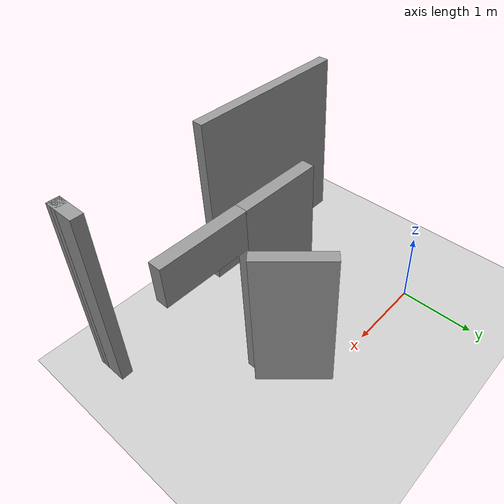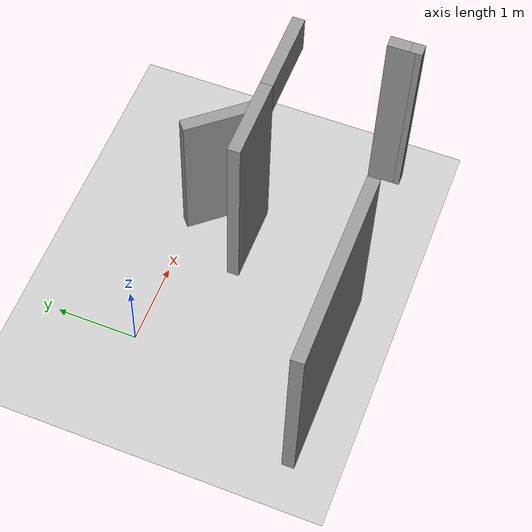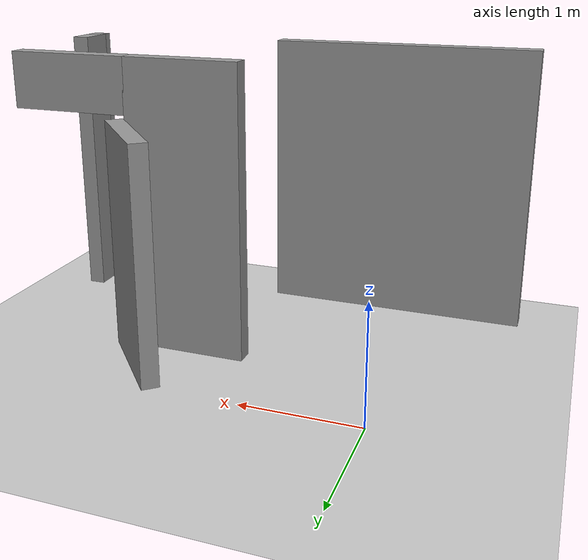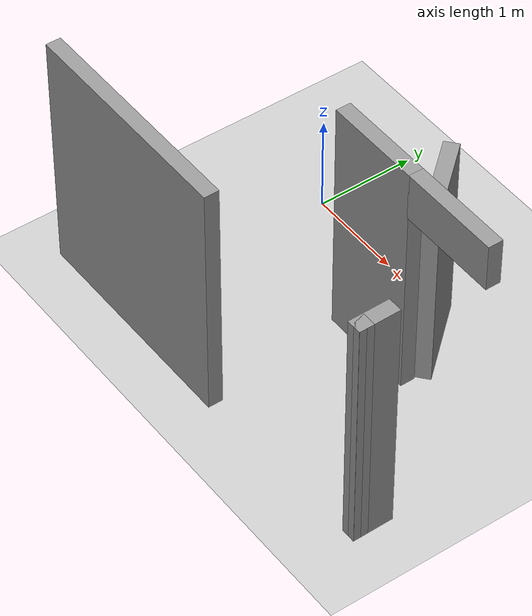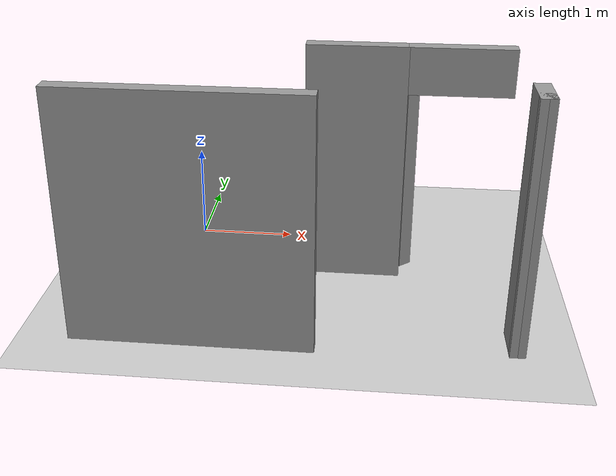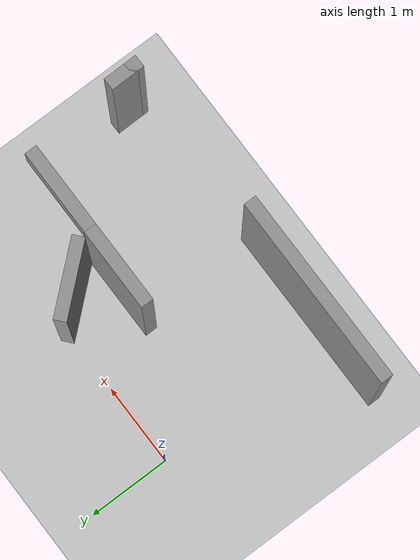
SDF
<sdf version="1.7">
 <world name="default">
  <model name="ground_plane">
   <static>1</static>
   <link name="link">
    <collision name="collision">
     <geometry><plane><normal>0 0 1</normal><size>100 100</size></plane></geometry>
     <surface>
      <contact><collide_bitmask>65535</collide_bitmask></contact>
      <friction><ode><mu>100</mu><mu2>50</mu2></ode></friction>
     </surface>
    </collision>
    <visual name="visual">
     <cast_shadows>0</cast_shadows>
     <geometry><plane><normal>0 0 1</normal><size>100 100</size></plane></geometry>
     <material>
      <script><uri>file://media/materials/scripts/gazebo.material</uri><name>Gazebo/Grey</name></script>
     </material>
    </visual>
   </link>
  </model>
  <model name="demo_clean">
   <link name="Wall_19">
    <pose>0.295923 -2.24288 0 0 -0 0</pose>
    <inertial>
     <inertia><ixx>0</ixx><ixy>0</ixy><ixz>0</ixz><iyy>0</iyy><iyz>0</iyz><izz>0</izz></inertia>
     <mass>0</mass>
    </inertial>
    <visual name="Wall_19_Visual">
     <pose>0 0 1.25 0 -0 0</pose>
     <geometry><box><size>2.34163 0.15 2.5</size></box></geometry>
     <material>
      <script><uri>file://media/materials/scripts/gazebo.material</uri><name>Gazebo/Grey</name></script>
      <ambient>1 1 1 1</ambient>
      <shader type="pixel"/>
     </material>
     <meta><layer>0</layer></meta>
    </visual>
    <collision name="Wall_19_Collision">
     <pose>0 0 1.25 0 -0 0</pose>
     <geometry><box><size>2.34163 0.15 2.5</size></box></geometry>
     <surface>
      <friction>
       <ode><mu>1</mu><mu2>1</mu2><fdir1>0 0 0</fdir1><slip1>0</slip1><slip2>0</slip2></ode>
       <torsional>
        <coefficient>1</coefficient>
        <patch_radius>0</patch_radius>
        <surface_radius>0</surface_radius>
        <use_patch_radius>1</use_patch_radius>
        <ode><slip>0</slip></ode>
       </torsional>
      </friction>
      <bounce><restitution_coefficient>0</restitution_coefficient><threshold>1e+06</threshold></bounce>
      <contact>
       <collide_without_contact>0</collide_without_contact>
       <collide_without_contact_bitmask>1</collide_without_contact_bitmask>
       <collide_bitmask>1</collide_bitmask>
       <ode>
        <soft_cfm>0</soft_cfm>
        <soft_erp>0.2</soft_erp>
        <kp>1e+13</kp>
        <kd>1</kd>
        <max_vel>0.01</max_vel>
        <min_depth>0</min_depth>
       </ode>
       <bullet>
        <split_impulse>1</split_impulse>
        <split_impulse_penetration_threshold>-0.01</split_impulse_penetration_threshold>
        <soft_cfm>0</soft_cfm>
        <soft_erp>0.2</soft_erp>
        <kp>1e+13</kp>
        <kd>1</kd>
       </bullet>
      </contact>
     </surface>
    </collision>
   </link>
   <link name="Wall_21_clone_0_clone_0_clone_clone_clone_clone">
    <pose>2.0073 -0.280742 -0.23202 0 -0 2.28452</pose>
    <inertial>
     <inertia><ixx>0</ixx><ixy>0</ixy><ixz>0</ixz><iyy>0</iyy><iyz>0</iyz><izz>0</izz></inertia>
     <mass>0</mass>
    </inertial>
    <gravity>0</gravity>
    <visual name="Wall_21_Visual">
     <pose>0 0 1.25 0 -0 0</pose>
     <geometry><box><size>0.924919 0.15 1.96033</size></box></geometry>
     <material>
      <script><uri>file://media/materials/scripts/gazebo.material</uri><name>Gazebo/Grey</name></script>
      <ambient>1 1 1 1</ambient>
      <shader type="pixel"><normal_map>__default__</normal_map></shader>
      <diffuse>0.7 0.7 0.7 1</diffuse>
      <specular>0.01 0.01 0.01 1</specular>
      <emissive>0 0 0 1</emissive>
     </material>
     <meta><layer>0</layer></meta>
    </visual>
    <collision name="Wall_21_Collision">
     <pose>0 0 1.25 0 -0 0</pose>
     <geometry><box><size>0.924919 0.15 1.96033</size></box></geometry>
     <surface>
      <friction>
       <ode><mu>1</mu><mu2>1</mu2><fdir1>0 0 0</fdir1><slip1>0</slip1><slip2>0</slip2></ode>
       <torsional>
        <coefficient>1</coefficient>
        <patch_radius>0</patch_radius>
        <surface_radius>0</surface_radius>
        <use_patch_radius>1</use_patch_radius>
        <ode><slip>0</slip></ode>
       </torsional>
      </friction>
      <bounce><restitution_coefficient>0</restitution_coefficient><threshold>1e+06</threshold></bounce>
      <contact>
       <collide_without_contact>0</collide_without_contact>
       <collide_without_contact_bitmask>1</collide_without_contact_bitmask>
       <collide_bitmask>1</collide_bitmask>
       <ode>
        <soft_cfm>0</soft_cfm>
        <soft_erp>0.2</soft_erp>
        <kp>1e+13</kp>
        <kd>1</kd>
        <max_vel>0.01</max_vel>
        <min_depth>0</min_depth>
       </ode>
       <bullet>
        <split_impulse>1</split_impulse>
        <split_impulse_penetration_threshold>-0.01</split_impulse_penetration_threshold>
        <soft_cfm>0</soft_cfm>
        <soft_erp>0.2</soft_erp>
        <kp>1e+13</kp>
        <kd>1</kd>
       </bullet>
      </contact>
     </surface>
    </collision>
   </link>
   <link name="Wall_28">
    <pose>1.74215 -0.745235 0 0 -0 0</pose>
    <visual name="Wall_28_Visual">
     <pose>0 0 1.25 0 -0 0</pose>
     <geometry><box><size>1 0.15 2.5</size></box></geometry>
     <material>
      <script><uri>file://media/materials/scripts/gazebo.material</uri><name>Gazebo/Grey</name></script>
      <ambient>1 1 1 1</ambient>
      <shader type="pixel"/>
     </material>
     <meta><layer>0</layer></meta>
    </visual>
    <collision name="Wall_28_Collision">
     <pose>0 0 1.25 0 -0 0</pose>
     <geometry><box><size>1 0.15 2.5</size></box></geometry>
     <surface>
      <friction>
       <ode><mu>1</mu><mu2>1</mu2><fdir1>0 0 0</fdir1><slip1>0</slip1><slip2>0</slip2></ode>
       <torsional>
        <coefficient>1</coefficient>
        <patch_radius>0</patch_radius>
        <surface_radius>0</surface_radius>
        <use_patch_radius>1</use_patch_radius>
        <ode><slip>0</slip></ode>
       </torsional>
      </friction>
      <bounce><restitution_coefficient>0</restitution_coefficient><threshold>1e+06</threshold></bounce>
      <contact>
       <collide_without_contact>0</collide_without_contact>
       <collide_without_contact_bitmask>1</collide_without_contact_bitmask>
       <collide_bitmask>1</collide_bitmask>
       <ode>
        <soft_cfm>0</soft_cfm>
        <soft_erp>0.2</soft_erp>
        <kp>1e+13</kp>
        <kd>1</kd>
        <max_vel>0.01</max_vel>
        <min_depth>0</min_depth>
       </ode>
       <bullet>
        <split_impulse>1</split_impulse>
        <split_impulse_penetration_threshold>-0.01</split_impulse_penetration_threshold>
        <soft_cfm>0</soft_cfm>
        <soft_erp>0.2</soft_erp>
        <kp>1e+13</kp>
        <kd>1</kd>
       </bullet>
      </contact>
     </surface>
    </collision>
   </link>
   <link name="Wall_28_clone">
    <pose>2.7476 -0.745235 1.01168 0 -0 0</pose>
    <inertial>
     <inertia><ixx>0</ixx><ixy>0</ixy><ixz>0</ixz><iyy>0</iyy><iyz>0</iyz><izz>0</izz></inertia>
     <mass>0</mass>
    </inertial>
    <gravity>0</gravity>
    <visual name="Wall_28_Visual">
     <pose>0 0 1.25 0 -0 0</pose>
     <geometry><box><size>1.03415 0.15 0.476648</size></box></geometry>
     <material>
      <script><uri>file://media/materials/scripts/gazebo.material</uri><name>Gazebo/Grey</name></script>
      <ambient>1 1 1 1</ambient>
      <shader type="pixel"><normal_map>__default__</normal_map></shader>
      <diffuse>0.7 0.7 0.7 1</diffuse>
      <specular>0.01 0.01 0.01 1</specular>
      <emissive>0 0 0 1</emissive>
     </material>
     <meta><layer>0</layer></meta>
    </visual>
    <collision name="Wall_28_Collision">
     <pose>0 0 1.25 0 -0 0</pose>
     <geometry><box><size>1.03415 0.15 0.476648</size></box></geometry>
     <surface>
      <friction>
       <ode><mu>1</mu><mu2>1</mu2><fdir1>0 0 0</fdir1><slip1>0</slip1><slip2>0</slip2></ode>
       <torsional>
        <coefficient>1</coefficient>
        <patch_radius>0</patch_radius>
        <surface_radius>0</surface_radius>
        <use_patch_radius>1</use_patch_radius>
        <ode><slip>0</slip></ode>
       </torsional>
      </friction>
      <bounce><restitution_coefficient>0</restitution_coefficient><threshold>1e+06</threshold></bounce>
      <contact>
       <collide_without_contact>0</collide_without_contact>
       <collide_without_contact_bitmask>1</collide_without_contact_bitmask>
       <collide_bitmask>1</collide_bitmask>
       <ode>
        <soft_cfm>0</soft_cfm>
        <soft_erp>0.2</soft_erp>
        <kp>1e+13</kp>
        <kd>1</kd>
        <max_vel>0.01</max_vel>
        <min_depth>0</min_depth>
       </ode>
       <bullet>
        <split_impulse>1</split_impulse>
        <split_impulse_penetration_threshold>-0.01</split_impulse_penetration_threshold>
        <soft_cfm>0</soft_cfm>
        <soft_erp>0.2</soft_erp>
        <kp>1e+13</kp>
        <kd>1</kd>
       </bullet>
      </contact>
     </surface>
    </collision>
   </link>
   <link name="Wall_48">
    <pose>3.33073 -2.13943 0 0 -0 0</pose>
    <visual name="Wall_48_Visual">
     <pose>0 0 1.25 0 -0 0</pose>
     <geometry><box><size>0.15 0.15 2.5</size></box></geometry>
     <material>
      <script><uri>file://media/materials/scripts/gazebo.material</uri><name>Gazebo/Grey</name></script>
      <ambient>1 1 1 1</ambient>
      <shader type="pixel"/>
     </material>
     <meta><layer>0</layer></meta>
    </visual>
    <collision name="Wall_48_Collision">
     <pose>0 0 1.25 0 -0 0</pose>
     <geometry><box><size>0.15 0.15 2.5</size></box></geometry>
     <surface>
      <friction>
       <ode><mu>1</mu><mu2>1</mu2><fdir1>0 0 0</fdir1><slip1>0</slip1><slip2>0</slip2></ode>
       <torsional>
        <coefficient>1</coefficient>
        <patch_radius>0</patch_radius>
        <surface_radius>0</surface_radius>
        <use_patch_radius>1</use_patch_radius>
        <ode><slip>0</slip></ode>
       </torsional>
      </friction>
      <bounce><restitution_coefficient>0</restitution_coefficient><threshold>1e+06</threshold></bounce>
      <contact>
       <collide_without_contact>0</collide_without_contact>
       <collide_without_contact_bitmask>1</collide_without_contact_bitmask>
       <collide_bitmask>1</collide_bitmask>
       <ode>
        <soft_cfm>0</soft_cfm>
        <soft_erp>0.2</soft_erp>
        <kp>1e+13</kp>
        <kd>1</kd>
        <max_vel>0.01</max_vel>
        <min_depth>0</min_depth>
       </ode>
       <bullet>
        <split_impulse>1</split_impulse>
        <split_impulse_penetration_threshold>-0.01</split_impulse_penetration_threshold>
        <soft_cfm>0</soft_cfm>
        <soft_erp>0.2</soft_erp>
        <kp>1e+13</kp>
        <kd>1</kd>
       </bullet>
      </contact>
     </surface>
    </collision>
   </link>
   <link name="Wall_51">
    <pose>3.3292 -2.00839 0 0 0 -1.55914</pose>
    <visual name="Wall_51_Visual">
     <pose>0 0 1.25 0 -0 0</pose>
     <geometry><box><size>0.412102 0.15 2.5</size></box></geometry>
     <material>
      <script><uri>file://media/materials/scripts/gazebo.material</uri><name>Gazebo/Grey</name></script>
      <ambient>1 1 1 1</ambient>
      <shader type="pixel"/>
     </material>
     <meta><layer>0</layer></meta>
    </visual>
    <collision name="Wall_51_Collision">
     <pose>0 0 1.25 0 -0 0</pose>
     <geometry><box><size>0.412102 0.15 2.5</size></box></geometry>
     <surface>
      <friction>
       <ode><mu>1</mu><mu2>1</mu2><fdir1>0 0 0</fdir1><slip1>0</slip1><slip2>0</slip2></ode>
       <torsional>
        <coefficient>1</coefficient>
        <patch_radius>0</patch_radius>
        <surface_radius>0</surface_radius>
        <use_patch_radius>1</use_patch_radius>
        <ode><slip>0</slip></ode>
       </torsional>
      </friction>
      <bounce><restitution_coefficient>0</restitution_coefficient><threshold>1e+06</threshold></bounce>
      <contact>
       <collide_without_contact>0</collide_without_contact>
       <collide_without_contact_bitmask>1</collide_without_contact_bitmask>
       <collide_bitmask>1</collide_bitmask>
       <ode>
        <soft_cfm>0</soft_cfm>
        <soft_erp>0.2</soft_erp>
        <kp>1e+13</kp>
        <kd>1</kd>
        <max_vel>0.01</max_vel>
        <min_depth>0</min_depth>
       </ode>
       <bullet>
        <split_impulse>1</split_impulse>
        <split_impulse_penetration_threshold>-0.01</split_impulse_penetration_threshold>
        <soft_cfm>0</soft_cfm>
        <soft_erp>0.2</soft_erp>
        <kp>1e+13</kp>
        <kd>1</kd>
       </bullet>
      </contact>
     </surface>
    </collision>
   </link>
   <static>1</static>
  </model>
 </world>
</sdf>
